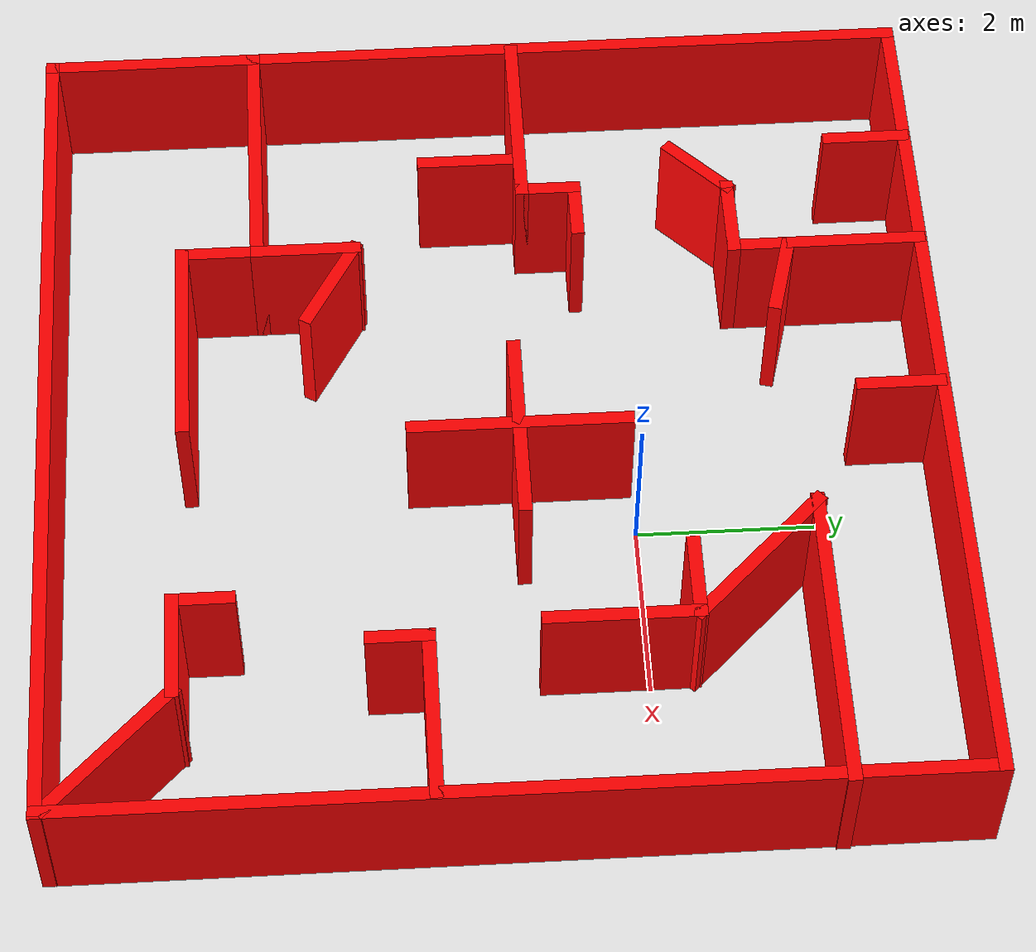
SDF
<sdf version="1.4">
 <world name="default">
  <light name="sun" type="directional">
   <pose>0 0 10 0 -0 0</pose>
   <diffuse>0.8 0.8 0.8 1</diffuse>
   <specular>0.2 0.2 0.2 1</specular>
   <attenuation>
    <range>1000</range>
    <constant>0.9</constant>
    <linear>0.01</linear>
    <quadratic>0.001</quadratic>
   </attenuation>
   <direction>-0.5 0.1 -0.9</direction>
  </light>
  <model name="ground_plane">
   <static>1</static>
   <link name="link">
    <collision name="collision">
     <geometry><plane><normal>0 0 1</normal><size>100 100</size></plane></geometry>
     <surface><friction><ode><mu>100</mu><mu2>50</mu2></ode></friction></surface>
    </collision>
    <visual name="visual">
     <cast_shadows>0</cast_shadows>
     <geometry><plane><normal>0 0 1</normal><size>100 100</size></plane></geometry>
     <material>
      <script><uri>file://media/materials/scripts/gazebo.material</uri><name>Gazebo/White</name></script>
     </material>
    </visual>
    <velocity_decay><linear>0</linear><angular>0</angular></velocity_decay>
   </link>
  </model>
  <physics type="ode">
   <max_step_size>0.001</max_step_size>
   <real_time_factor>1</real_time_factor>
   <real_time_update_rate>1000</real_time_update_rate>
   <gravity>0 0 -9.8</gravity>
  </physics>
  <scene><ambient>0.4 0.4 0.4 1</ambient><background>0.7 0.7 0.7 1</background><shadows>1</shadows></scene>
  <spherical_coordinates>
   <surface_model>EARTH_WGS84</surface_model>
   <latitude_deg>0</latitude_deg>
   <longitude_deg>0</longitude_deg>
   <elevation>0</elevation>
   <heading_deg>0</heading_deg>
  </spherical_coordinates>
  <model name="test_space_small">
   <pose>-1 -1.52077 -0.50794 0 -0 0</pose>
   <link name="Wall_11">
    <collision name="Wall_11_Collision">
     <geometry><box><size>2.5 0.15 1.5</size></box></geometry>
     <pose>0 0 1.25 0 -0 0</pose>
    </collision>
    <visual name="Wall_11_Visual">
     <pose>0 0 1.25 0 -0 0</pose>
     <geometry><box><size>2.5 0.15 1.5</size></box></geometry>
     <material>
      <script><uri>file://media/materials/scripts/gazebo.material</uri><name>Gazebo/Grey</name></script>
      <ambient>1 0 0 1</ambient>
     </material>
    </visual>
    <pose>0.413537 0.254349 0 0 0 -1.5708</pose>
    <velocity_decay><linear>0</linear><angular>0</angular></velocity_decay>
   </link>
   <link name="Wall_13">
    <collision name="Wall_13_Collision">
     <geometry><box><size>2.25 0.15 1.5</size></box></geometry>
     <pose>0 0 1.25 0 -0 0</pose>
    </collision>
    <visual name="Wall_13_Visual">
     <pose>0 0 1.25 0 -0 0</pose>
     <geometry><box><size>2.25 0.15 1.5</size></box></geometry>
     <material>
      <script><uri>file://media/materials/scripts/gazebo.material</uri><name>Gazebo/Grey</name></script>
      <ambient>1 0 0 1</ambient>
     </material>
    </visual>
    <pose>0.437745 0.242648 0 0 -0 0</pose>
    <velocity_decay><linear>0</linear><angular>0</angular></velocity_decay>
   </link>
   <link name="Wall_15">
    <collision name="Wall_15_Collision">
     <geometry><box><size>2.25 0.15 1.5</size></box></geometry>
     <pose>0 0 1.25 0 -0 0</pose>
    </collision>
    <visual name="Wall_15_Visual">
     <pose>0 0 1.25 0 -0 0</pose>
     <geometry><box><size>2.25 0.15 1.5</size></box></geometry>
     <material>
      <script><uri>file://media/materials/scripts/gazebo.material</uri><name>Gazebo/Grey</name></script>
      <ambient>1 0 0 1</ambient>
     </material>
    </visual>
    <pose>-1.87941 3.859 0 0 0 -1.5708</pose>
    <velocity_decay><linear>0</linear><angular>0</angular></velocity_decay>
   </link>
   <link name="Wall_16">
    <collision name="Wall_16_Collision">
     <geometry><box><size>1 0.15 1.5</size></box></geometry>
     <pose>0 0 1.25 0 -0 0</pose>
    </collision>
    <visual name="Wall_16_Visual">
     <pose>0 0 1.25 0 -0 0</pose>
     <geometry><box><size>1 0.15 1.5</size></box></geometry>
     <material>
      <script><uri>file://media/materials/scripts/gazebo.material</uri><name>Gazebo/Grey</name></script>
      <ambient>1 0 0 1</ambient>
     </material>
    </visual>
    <pose>-2.30441 2.809 0 0 -0 3.14159</pose>
    <velocity_decay><linear>0</linear><angular>0</angular></velocity_decay>
   </link>
   <link name="Wall_17">
    <collision name="Wall_17_Collision">
     <geometry><box><size>1 0.15 1.5</size></box></geometry>
     <pose>0 0 1.25 0 -0 0</pose>
    </collision>
    <visual name="Wall_17_Visual">
     <pose>0 0 1.25 0 -0 0</pose>
     <geometry><box><size>1 0.15 1.5</size></box></geometry>
     <material>
      <script><uri>file://media/materials/scripts/gazebo.material</uri><name>Gazebo/Grey</name></script>
      <ambient>1 0 0 1</ambient>
     </material>
    </visual>
    <pose>-3.02993 2.50848 0 0 0 -2.35619</pose>
    <velocity_decay><linear>0</linear><angular>0</angular></velocity_decay>
   </link>
   <link name="Wall_19">
    <collision name="Wall_19_Collision">
     <geometry><box><size>1 0.15 1.5</size></box></geometry>
     <pose>0 0 1.25 0 -0 0</pose>
    </collision>
    <visual name="Wall_19_Visual">
     <pose>0 0 1.25 0 -0 0</pose>
     <geometry><box><size>1 0.15 1.5</size></box></geometry>
     <material>
      <script><uri>file://media/materials/scripts/gazebo.material</uri><name>Gazebo/Grey</name></script>
      <ambient>1 0 0 1</ambient>
     </material>
    </visual>
    <pose>-1.44878 3.31059 0 0 0 -0.261799</pose>
    <velocity_decay><linear>0</linear><angular>0</angular></velocity_decay>
   </link>
   <link name="Wall_2">
    <collision name="Wall_2_Collision">
     <geometry><box><size>10 0.15 1.5</size></box></geometry>
     <pose>0 0 1.25 0 -0 0</pose>
    </collision>
    <visual name="Wall_2_Visual">
     <pose>0 0 1.25 0 -0 0</pose>
     <geometry><box><size>10 0.15 1.5</size></box></geometry>
     <material>
      <script><uri>file://media/materials/scripts/gazebo.material</uri><name>Gazebo/Grey</name></script>
      <ambient>1 0 0 1</ambient>
     </material>
    </visual>
    <pose>-0.01409 4.925 0 0 -0 0</pose>
    <velocity_decay><linear>0</linear><angular>0</angular></velocity_decay>
   </link>
   <link name="Wall_21">
    <collision name="Wall_21_Collision">
     <geometry><box><size>2.25 0.15 1.5</size></box></geometry>
     <pose>0 0 1.25 0 -0 0</pose>
    </collision>
    <visual name="Wall_21_Visual">
     <pose>0 0 1.25 0 -0 0</pose>
     <geometry><box><size>2.25 0.15 1.5</size></box></geometry>
     <material>
      <script><uri>file://media/materials/scripts/gazebo.material</uri><name>Gazebo/Grey</name></script>
      <ambient>1 0 0 1</ambient>
     </material>
    </visual>
    <pose>-3.86656 0.463897 0 0 -0 0</pose>
    <velocity_decay><linear>0</linear><angular>0</angular></velocity_decay>
   </link>
   <link name="Wall_22">
    <collision name="Wall_22_Collision">
     <geometry><box><size>0.75 0.15 1.5</size></box></geometry>
     <pose>0 0 1.25 0 -0 0</pose>
    </collision>
    <visual name="Wall_22_Visual">
     <pose>0 0 1.25 0 -0 0</pose>
     <geometry><box><size>0.75 0.15 1.5</size></box></geometry>
     <material>
      <script><uri>file://media/materials/scripts/gazebo.material</uri><name>Gazebo/Grey</name></script>
      <ambient>1 0 0 1</ambient>
     </material>
    </visual>
    <pose>-2.81656 0.763897 0 0 -0 1.5708</pose>
    <velocity_decay><linear>0</linear><angular>0</angular></velocity_decay>
   </link>
   <link name="Wall_23">
    <collision name="Wall_23_Collision">
     <geometry><box><size>0.75 0.15 1.5</size></box></geometry>
     <pose>0 0 1.25 0 -0 0</pose>
    </collision>
    <visual name="Wall_23_Visual">
     <pose>0 0 1.25 0 -0 0</pose>
     <geometry><box><size>0.75 0.15 1.5</size></box></geometry>
     <material>
      <script><uri>file://media/materials/scripts/gazebo.material</uri><name>Gazebo/Grey</name></script>
      <ambient>1 0 0 1</ambient>
     </material>
    </visual>
    <pose>-2.51656 1.0639 0 0 -0 0</pose>
    <velocity_decay><linear>0</linear><angular>0</angular></velocity_decay>
   </link>
   <link name="Wall_25">
    <collision name="Wall_25_Collision">
     <geometry><box><size>1.25 0.15 1.5</size></box></geometry>
     <pose>0 0 1.25 0 -0 0</pose>
    </collision>
    <visual name="Wall_25_Visual">
     <pose>0 0 1.25 0 -0 0</pose>
     <geometry><box><size>1.25 0.15 1.5</size></box></geometry>
     <material>
      <script><uri>file://media/materials/scripts/gazebo.material</uri><name>Gazebo/Grey</name></script>
      <ambient>1 0 0 1</ambient>
     </material>
    </visual>
    <pose>-3.26725 -0.086103 0 0 0 -1.5708</pose>
    <velocity_decay><linear>0</linear><angular>0</angular></velocity_decay>
   </link>
   <link name="Wall_28">
    <collision name="Wall_28_Collision">
     <geometry><box><size>1 0.15 1.5</size></box></geometry>
     <pose>0 0 1.25 0 -0 0</pose>
    </collision>
    <visual name="Wall_28_Visual">
     <pose>0 0 1.25 0 -0 0</pose>
     <geometry><box><size>1 0.15 1.5</size></box></geometry>
     <material>
      <script><uri>file://media/materials/scripts/gazebo.material</uri><name>Gazebo/Grey</name></script>
      <ambient>1 0 0 1</ambient>
     </material>
    </visual>
    <pose>-2.08667 -2.99825 0 0 0 -1.5708</pose>
    <velocity_decay><linear>0</linear><angular>0</angular></velocity_decay>
   </link>
   <link name="Wall_29">
    <collision name="Wall_29_Collision">
     <geometry><box><size>2.5 0.15 1.5</size></box></geometry>
     <pose>0 0 1.25 0 -0 0</pose>
    </collision>
    <visual name="Wall_29_Visual">
     <pose>0 0 1.25 0 -0 0</pose>
     <geometry><box><size>2.5 0.15 1.5</size></box></geometry>
     <material>
      <script><uri>file://media/materials/scripts/gazebo.material</uri><name>Gazebo/Grey</name></script>
      <ambient>1 0 0 1</ambient>
     </material>
    </visual>
    <pose>-0.911673 -3.42325 0 0 -0 0</pose>
    <velocity_decay><linear>0</linear><angular>0</angular></velocity_decay>
   </link>
   <link name="Wall_3">
    <collision name="Wall_3_Collision">
     <geometry><box><size>10 0.15 1.5</size></box></geometry>
     <pose>0 0 1.25 0 -0 0</pose>
    </collision>
    <visual name="Wall_3_Visual">
     <pose>0 0 1.25 0 -0 0</pose>
     <geometry><box><size>10 0.15 1.5</size></box></geometry>
     <material>
      <script><uri>file://media/materials/scripts/gazebo.material</uri><name>Gazebo/Grey</name></script>
      <ambient>1 0 0 1</ambient>
     </material>
    </visual>
    <pose>4.91091 0 0 0 0 -1.5708</pose>
    <velocity_decay><linear>0</linear><angular>0</angular></velocity_decay>
   </link>
   <link name="Wall_31">
    <collision name="Wall_31_Collision">
     <geometry><box><size>1 0.15 1.5</size></box></geometry>
     <pose>0 0 1.25 0 -0 0</pose>
    </collision>
    <visual name="Wall_31_Visual">
     <pose>0 0 1.25 0 -0 0</pose>
     <geometry><box><size>1 0.15 1.5</size></box></geometry>
     <material>
      <script><uri>file://media/materials/scripts/gazebo.material</uri><name>Gazebo/Grey</name></script>
      <ambient>1 0 0 1</ambient>
     </material>
    </visual>
    <pose>-3.36781 4.484 0 0 0 -1.5708</pose>
    <velocity_decay><linear>0</linear><angular>0</angular></velocity_decay>
   </link>
   <link name="Wall_33">
    <collision name="Wall_33_Collision">
     <geometry><box><size>3.5 0.15 1.5</size></box></geometry>
     <pose>0 0 1.25 0 -0 0</pose>
    </collision>
    <visual name="Wall_33_Visual">
     <pose>0 0 1.25 0 -0 0</pose>
     <geometry><box><size>3.5 0.15 1.5</size></box></geometry>
     <material>
      <script><uri>file://media/materials/scripts/gazebo.material</uri><name>Gazebo/Grey</name></script>
      <ambient>1 0 0 1</ambient>
     </material>
    </visual>
    <pose>3.26409 3.38036 0 0 -0 3.14159</pose>
    <velocity_decay><linear>0</linear><angular>0</angular></velocity_decay>
   </link>
   <link name="Wall_34">
    <collision name="Wall_34_Collision">
     <geometry><box><size>2.07602 0.15 1.5</size></box></geometry>
     <pose>0 0 1.25 0 -0 0</pose>
    </collision>
    <visual name="Wall_34_Visual">
     <pose>0 0 1.25 0 -0 0</pose>
     <geometry><box><size>2.07602 0.15 1.5</size></box></geometry>
     <material>
      <script><uri>file://media/materials/scripts/gazebo.material</uri><name>Gazebo/Grey</name></script>
      <ambient>1 0 0 1</ambient>
     </material>
    </visual>
    <pose>2.26006 2.68957 0 0 0 -0.799959</pose>
    <velocity_decay><linear>0</linear><angular>0</angular></velocity_decay>
   </link>
   <link name="Wall_35">
    <collision name="Wall_35_Collision">
     <geometry><box><size>1 0.15 1.5</size></box></geometry>
     <pose>0 0 1.25 0 -0 0</pose>
    </collision>
    <visual name="Wall_35_Visual">
     <pose>0 0 1.25 0 -0 0</pose>
     <geometry><box><size>1 0.15 1.5</size></box></geometry>
     <material>
      <script><uri>file://media/materials/scripts/gazebo.material</uri><name>Gazebo/Grey</name></script>
      <ambient>1 0 0 1</ambient>
     </material>
    </visual>
    <pose>2.48591 1.99877 0 0 -0 3.14159</pose>
    <velocity_decay><linear>0</linear><angular>0</angular></velocity_decay>
   </link>
   <link name="Wall_38">
    <collision name="Wall_38_Collision">
     <geometry><box><size>1.75 0.15 1.5</size></box></geometry>
     <pose>0 0 1.25 0 -0 0</pose>
    </collision>
    <visual name="Wall_38_Visual">
     <pose>0 0 1.25 0 -0 0</pose>
     <geometry><box><size>1.75 0.15 1.5</size></box></geometry>
     <material>
      <script><uri>file://media/materials/scripts/gazebo.material</uri><name>Gazebo/Grey</name></script>
      <ambient>1 0 0 1</ambient>
     </material>
    </visual>
    <pose>2.91091 1.19877 0 0 0 -1.5708</pose>
    <velocity_decay><linear>0</linear><angular>0</angular></velocity_decay>
   </link>
   <link name="Wall_4">
    <collision name="Wall_4_Collision">
     <geometry><box><size>10 0.15 1.5</size></box></geometry>
     <pose>0 0 1.25 0 -0 0</pose>
    </collision>
    <visual name="Wall_4_Visual">
     <pose>0 0 1.25 0 -0 0</pose>
     <geometry><box><size>10 0.15 1.5</size></box></geometry>
     <material>
      <script><uri>file://media/materials/scripts/gazebo.material</uri><name>Gazebo/Grey</name></script>
      <ambient>1 0 0 1</ambient>
     </material>
    </visual>
    <pose>-0.01409 -4.925 0 0 -0 3.14159</pose>
    <velocity_decay><linear>0</linear><angular>0</angular></velocity_decay>
   </link>
   <link name="Wall_40">
    <collision name="Wall_40_Collision">
     <geometry><box><size>1 0.15 1.5</size></box></geometry>
     <pose>0 0 1.25 0 -0 0</pose>
    </collision>
    <visual name="Wall_40_Visual">
     <pose>0 0 1.25 0 -0 0</pose>
     <geometry><box><size>1 0.15 1.5</size></box></geometry>
     <material>
      <script><uri>file://media/materials/scripts/gazebo.material</uri><name>Gazebo/Grey</name></script>
      <ambient>1 0 0 1</ambient>
     </material>
    </visual>
    <pose>0.111834 4.46388 0 0 0 -1.5708</pose>
    <velocity_decay><linear>0</linear><angular>0</angular></velocity_decay>
   </link>
   <link name="Wall_47">
    <collision name="Wall_47_Collision">
     <geometry><box><size>2 0.15 1.5</size></box></geometry>
     <pose>0 0 1.25 0 -0 0</pose>
    </collision>
    <visual name="Wall_47_Visual">
     <pose>0 0 1.25 0 -0 0</pose>
     <geometry><box><size>2 0.15 1.5</size></box></geometry>
     <material>
      <script><uri>file://media/materials/scripts/gazebo.material</uri><name>Gazebo/Grey</name></script>
      <ambient>1 0 0 1</ambient>
     </material>
    </visual>
    <pose>3.97386 -0.863599 0 0 -0 3.14159</pose>
    <velocity_decay><linear>0</linear><angular>0</angular></velocity_decay>
   </link>
   <link name="Wall_48">
    <collision name="Wall_48_Collision">
     <geometry><box><size>0.75 0.15 1.5</size></box></geometry>
     <pose>0 0 1.25 0 -0 0</pose>
    </collision>
    <visual name="Wall_48_Visual">
     <pose>0 0 1.25 0 -0 0</pose>
     <geometry><box><size>0.75 0.15 1.5</size></box></geometry>
     <material>
      <script><uri>file://media/materials/scripts/gazebo.material</uri><name>Gazebo/Grey</name></script>
      <ambient>1 0 0 1</ambient>
     </material>
    </visual>
    <pose>3.04886 -1.1636 0 0 0 -1.5708</pose>
    <velocity_decay><linear>0</linear><angular>0</angular></velocity_decay>
   </link>
   <link name="Wall_5">
    <collision name="Wall_5_Collision">
     <geometry><box><size>10 0.15 1.5</size></box></geometry>
     <pose>0 0 1.25 0 -0 0</pose>
    </collision>
    <visual name="Wall_5_Visual">
     <pose>0 0 1.25 0 -0 0</pose>
     <geometry><box><size>10 0.15 1.5</size></box></geometry>
     <material>
      <script><uri>file://media/materials/scripts/gazebo.material</uri><name>Gazebo/Grey</name></script>
      <ambient>1 0 0 1</ambient>
     </material>
    </visual>
    <pose>-4.93909 0 0 0 -0 1.5708</pose>
    <velocity_decay><linear>0</linear><angular>0</angular></velocity_decay>
   </link>
   <link name="Wall_53">
    <collision name="Wall_53_Collision">
     <geometry><box><size>2 0.15 1.5</size></box></geometry>
     <pose>0 0 1.25 0 -0 0</pose>
    </collision>
    <visual name="Wall_53_Visual">
     <pose>0 0 1.25 0 -0 0</pose>
     <geometry><box><size>2 0.15 1.5</size></box></geometry>
     <material>
      <script><uri>file://media/materials/scripts/gazebo.material</uri><name>Gazebo/Grey</name></script>
      <ambient>1 0 0 1</ambient>
     </material>
    </visual>
    <pose>4.22969 -4.19702 0 0 0 -0.785398</pose>
    <velocity_decay><linear>0</linear><angular>0</angular></velocity_decay>
   </link>
   <link name="Wall_55">
    <collision name="Wall_55_Collision">
     <geometry><box><size>1.25 0.15 1.5</size></box></geometry>
     <pose>0 0 1.25 0 -0 0</pose>
    </collision>
    <visual name="Wall_55_Visual">
     <pose>0 0 1.25 0 -0 0</pose>
     <geometry><box><size>1.25 0.15 1.5</size></box></geometry>
     <material>
      <script><uri>file://media/materials/scripts/gazebo.material</uri><name>Gazebo/Grey</name></script>
      <ambient>1 0 0 1</ambient>
     </material>
    </visual>
    <pose>3.02561 -3.54295 0 0 -0 3.14159</pose>
    <velocity_decay><linear>0</linear><angular>0</angular></velocity_decay>
   </link>
   <link name="Wall_57">
    <collision name="Wall_57_Collision">
     <geometry><box><size>0.75 0.15 1.5</size></box></geometry>
     <pose>0 0 1.25 0 -0 0</pose>
    </collision>
    <visual name="Wall_57_Visual">
     <pose>0 0 1.25 0 -0 0</pose>
     <geometry><box><size>0.75 0.15 1.5</size></box></geometry>
     <material>
      <script><uri>file://media/materials/scripts/gazebo.material</uri><name>Gazebo/Grey</name></script>
      <ambient>1 0 0 1</ambient>
     </material>
    </visual>
    <pose>2.47561 -3.24295 0 0 -0 1.5708</pose>
    <velocity_decay><linear>0</linear><angular>0</angular></velocity_decay>
   </link>
   <link name="Wall_7">
    <collision name="Wall_7_Collision">
     <geometry><box><size>3 0.15 1.5</size></box></geometry>
     <pose>0 0 1.25 0 -0 0</pose>
    </collision>
    <visual name="Wall_7_Visual">
     <pose>0 0 1.25 0 -0 0</pose>
     <geometry><box><size>3 0.15 1.5</size></box></geometry>
     <material>
      <script><uri>file://media/materials/scripts/gazebo.material</uri><name>Gazebo/Grey</name></script>
      <ambient>1 0 0 1</ambient>
     </material>
    </visual>
    <pose>-3.51167 -2.57325 0 0 -0 0</pose>
    <velocity_decay><linear>0</linear><angular>0</angular></velocity_decay>
   </link>
   <link name="Wall_8">
    <collision name="Wall_8_Collision">
     <geometry><box><size>1.25 0.15 1.5</size></box></geometry>
     <pose>0 0 1.25 0 -0 0</pose>
    </collision>
    <visual name="Wall_8_Visual">
     <pose>0 0 1.25 0 -0 0</pose>
     <geometry><box><size>1.25 0.15 1.5</size></box></geometry>
     <material>
      <script><uri>file://media/materials/scripts/gazebo.material</uri><name>Gazebo/Grey</name></script>
      <ambient>1 0 0 1</ambient>
     </material>
    </visual>
    <pose>-2.08667 -2.02325 0 0 -0 1.5708</pose>
    <velocity_decay><linear>0</linear><angular>0</angular></velocity_decay>
   </link>
   <link name="Wall_9">
    <collision name="Wall_9_Collision">
     <geometry><box><size>1.25 0.15 1.5</size></box></geometry>
     <pose>0 0 1.25 0 -0 0</pose>
    </collision>
    <visual name="Wall_9_Visual">
     <pose>0 0 1.25 0 -0 0</pose>
     <geometry><box><size>1.25 0.15 1.5</size></box></geometry>
     <material>
      <script><uri>file://media/materials/scripts/gazebo.material</uri><name>Gazebo/Grey</name></script>
      <ambient>1 0 0 1</ambient>
     </material>
    </visual>
    <pose>-1.61036 -1.74825 0 0 0 -0.523599</pose>
    <velocity_decay><linear>0</linear><angular>0</angular></velocity_decay>
   </link>
   <static>1</static>
  </model>
 </world>
</sdf>
